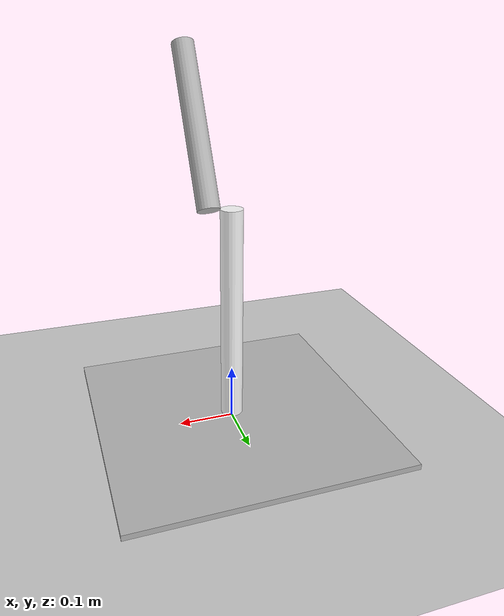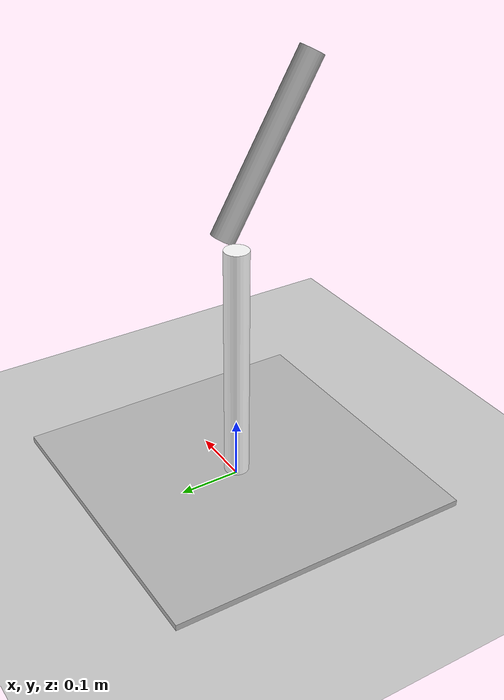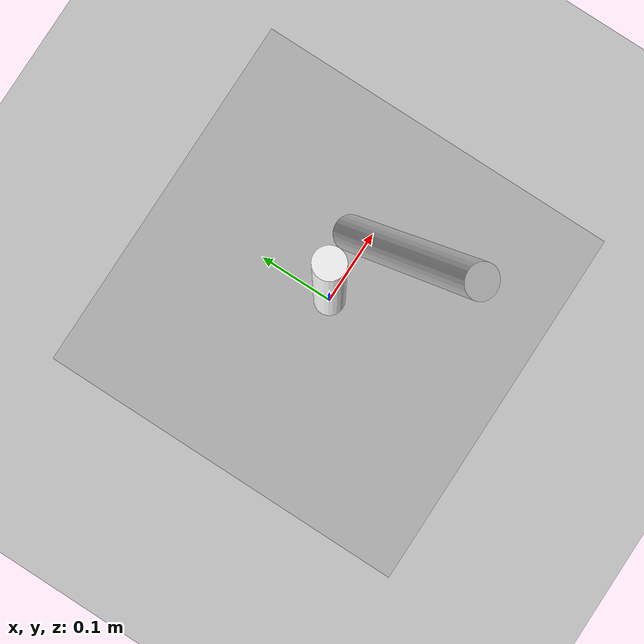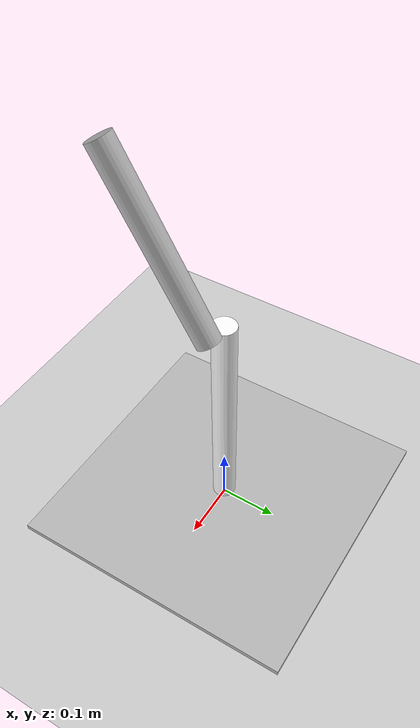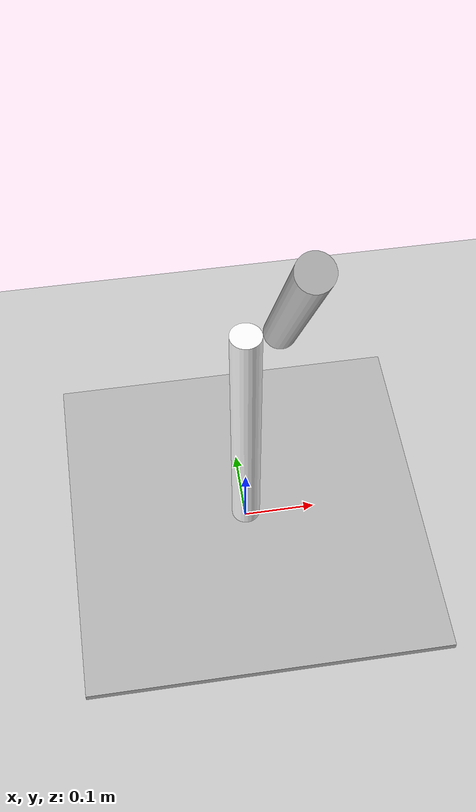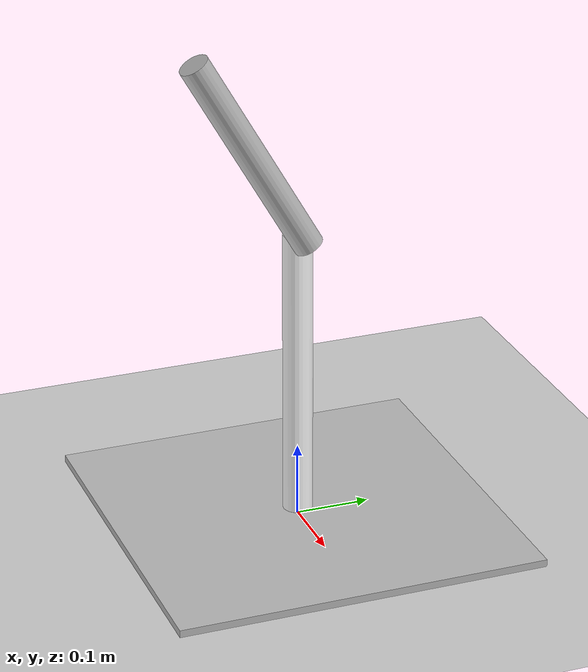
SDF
<?xml version="1.0" ?>
<sdf version="1.6">
  <world name="default">
    <physics name="fast" type="ignored">
      <real_time_factor>0</real_time_factor>
    </physics>

    <plugin
      filename="gz-sim-physics-system"
      name="gz::sim::systems::Physics">
    </plugin>
    <plugin
      filename="gz-sim-scene-broadcaster-system"
      name="gz::sim::systems::SceneBroadcaster">
    </plugin>

    <model name="ground_plane">
      <static>true</static>
      <link name="link">
        <collision name="collision">
          <geometry>
            <plane>
              <normal>0 0 1</normal>
              <size>100 100</size>
            </plane>
          </geometry>
        </collision>
        <visual name="visual">
          <geometry>
            <plane>
              <normal>0 0 1</normal>
              <size>100 100</size>
            </plane>
          </geometry>
          <material>
            <ambient>0.8 0.8 0.8 1</ambient>
            <diffuse>0.8 0.8 0.8 1</diffuse>
            <specular>0.8 0.8 0.8 1</specular>
          </material>
        </visual>
      </link>
    </model>
    <model name="revolute_demo">
      <pose>0 0 0.005 0 0 0</pose>
      <link name="base_link">
        <pose>0.0 0.0 0.0 0 0 0</pose>
        <inertial>
          <inertia>
            <ixx>2.501</ixx>
            <ixy>0</ixy>
            <ixz>0</ixz>
            <iyy>2.501</iyy>
            <iyz>0</iyz>
            <izz>5</izz>
          </inertia>
          <mass>120.0</mass>
        </inertial>
        <visual name="base_visual">
          <pose>0.0 0.0 0.0 0 0 0</pose>
          <geometry>
            <box>
              <size>0.5 0.5 0.01</size>
            </box>
          </geometry>
        </visual>
        <collision name="base_collision">
          <pose>0.0 0.0 0.0 0 0 0</pose>
          <geometry>
            <box>
              <size>0.5 0.5 0.01</size>
            </box>
          </geometry>
        </collision>
      </link>
      <link name="link1">
        <pose>0.0 0.0 0.2 0 0 0</pose>
        <inertial>
          <inertia>
            <ixx>0.032</ixx>
            <ixy>0</ixy>
            <ixz>0</ixz>
            <iyy>0.032</iyy>
            <iyz>0</iyz>
            <izz>0.00012</izz>
          </inertia>
          <mass>0.6</mass>
        </inertial>
        <visual name="visual1">
          <geometry>
            <cylinder>
              <length>0.4</length>
              <radius>0.02</radius>
            </cylinder>
          </geometry>
          <material>
            <ambient>1 1 1 1</ambient>
            <diffuse>1 1 1 1</diffuse>
            <specular>1 1 1 1</specular>
          </material>
        </visual>
        <collision name="collision">
          <geometry>
            <cylinder>
              <length>0.4</length>
              <radius>0.02</radius>
            </cylinder>
          </geometry>
        </collision>
      </link>
      <joint name="j1" type="fixed">
        <parent>base_link</parent>
        <child>link1</child>
      </joint>
      <link name="link2">
        <pose>0.04 -0.075 0.53 0.5236 0 0</pose>
        <inertial>
          <pose>0.0 0.0 0.0 0 0 0</pose>
          <inertia>
            <ixx>0.032</ixx>
            <ixy>0</ixy>
            <ixz>0</ixz>
            <iyy>0.032</iyy>
            <iyz>0</iyz>
            <izz>0.00012</izz>
          </inertia>
          <mass>0.6</mass>
        </inertial>
        <visual name="visual">
          <geometry>
            <cylinder>
              <length>0.3</length>
              <radius>0.02</radius>
            </cylinder>
          </geometry>
        </visual>
        <collision name="collision">
          <geometry>
            <cylinder>
              <length>0.3</length>
              <radius>0.02</radius>
            </cylinder>
          </geometry>
        </collision>
      </link>

      <joint name="j2" type="revolute">
        <pose>0 0 -0.15 0 0 0</pose>
        <parent>link1</parent>
        <child>link2</child>
        <axis>
          <xyz>1 0 0</xyz>
        </axis>
      </joint>
    </model>
  </world>
</sdf>
